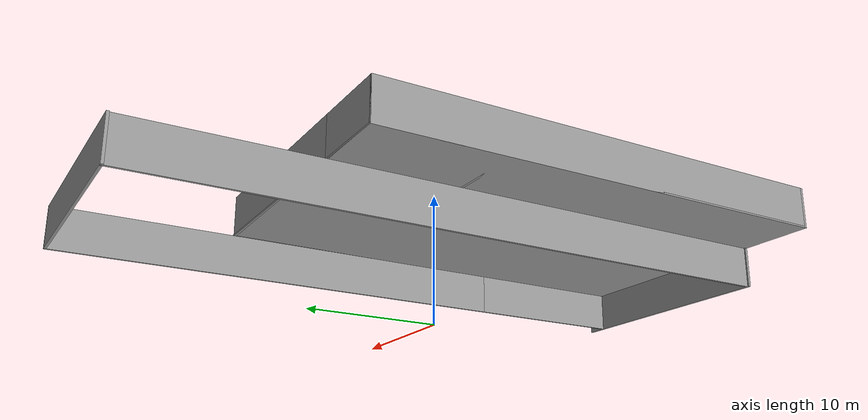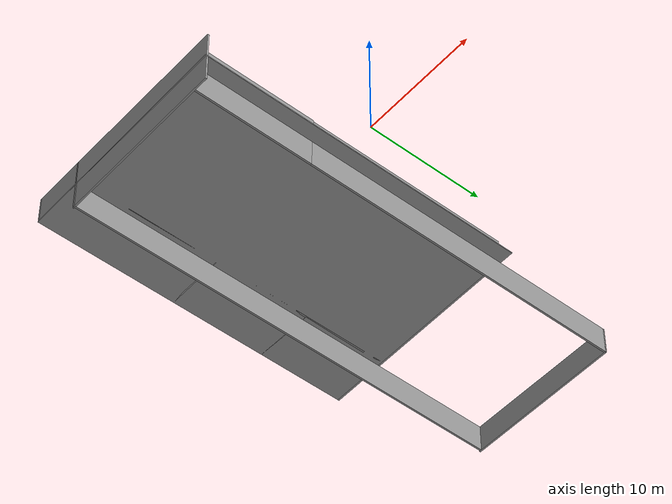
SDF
<?xml version='1.0'?>
<sdf version='1.6'>
  <model name='second_add'>
    <pose frame=''>-13.8882 7.9927 0 0 -0 0</pose>
    <link name='Floor_1'>
      <collision name='Floor_1_Collision'>
        <geometry>
          <box>
            <size>19.9273 28.7505 0.1</size>
          </box>
        </geometry>
        <pose frame=''>0 0 0.05 0 -0 0</pose>
      </collision>
      <visual name='Floor_1_Visual'>
        <pose frame=''>0 0 0.05 0 -0 0</pose>
        <geometry>
          <box>
            <size>19.9273 28.7505 0.1</size>
          </box>
        </geometry>
        <material>
          <script>
            <uri>file://media/materials/scripts/gazebo.material</uri>
            <name>Gazebo/Grey</name>
          </script>
          <ambient>1 1 1 1</ambient>
        </material>
        <meta>
          <layer>1</layer>
        </meta>
      </visual>
      <pose frame=''>1e-06 -5.29758 2.5 0 -0 0</pose>
    </link>
    <link name='Wall_17'>
      <collision name='Wall_17_Collision'>
        <geometry>
          <box>
            <size>15.3272 0.15 2.5</size>
          </box>
        </geometry>
        <pose frame=''>0 0 1.25 0 -0 0</pose>
      </collision>
      <visual name='Wall_17_Visual'>
        <pose frame=''>0 0 1.25 0 -0 0</pose>
        <geometry>
          <box>
            <size>15.3272 0.15 2.5</size>
          </box>
        </geometry>
        <material>
          <script>
            <uri>file://media/materials/scripts/gazebo.material</uri>
            <name>Gazebo/Grey</name>
          </script>
          <ambient>1 1 1 1</ambient>
        </material>
        <meta>
          <layer>1</layer>
        </meta>
      </visual>
      <pose frame=''>2.29977 -19.55 2.5 0 -0 0.006236</pose>
    </link>
    <link name='Wall_18'>
      <collision name='Wall_18_Collision'>
        <geometry>
          <box>
            <size>10.5 0.15 2.5</size>
          </box>
        </geometry>
        <pose frame=''>0 0 1.25 0 -0 0</pose>
      </collision>
      <visual name='Wall_18_Visual'>
        <pose frame=''>0 0 1.25 0 -0 0</pose>
        <geometry>
          <box>
            <size>10.5 0.15 2.5</size>
          </box>
        </geometry>
        <material>
          <script>
            <uri>file://media/materials/scripts/gazebo.material</uri>
            <name>Gazebo/Grey</name>
          </script>
          <ambient>1 1 1 1</ambient>
        </material>
        <meta>
          <layer>1</layer>
        </meta>
      </visual>
      <pose frame=''>8.6382 -14.1777 2.5 0 -0 -1.5708</pose>
    </link>
    <link name='Wall_2'>
      <collision name='Wall_2_Collision'>
        <geometry>
          <box>
            <size>28.75 0.15 2.5</size>
          </box>
        </geometry>
        <pose frame=''>0 0 1.25 0 -0 0</pose>
      </collision>
      <visual name='Wall_2_Visual'>
        <pose frame=''>0 0 1.25 0 -0 0</pose>
        <geometry>
          <box>
            <size>28.75 0.15 2.5</size>
          </box>
        </geometry>
        <material>
          <script>
            <uri>file://media/materials/scripts/gazebo.material</uri>
            <name>Gazebo/Grey</name>
          </script>
          <ambient>1 1 1 1</ambient>
        </material>
        <meta>
          <layer>0</layer>
        </meta>
      </visual>
      <pose frame=''>8.6382 5.2973 0 0 -0 1.5708</pose>
    </link>
    <link name='Wall_20'>
      <collision name='Wall_20_Collision'>
        <geometry>
          <box>
            <size>4.75 0.15 2.5</size>
          </box>
        </geometry>
        <pose frame=''>0 0 1.25 0 -0 0</pose>
      </collision>
      <visual name='Wall_20_Visual'>
        <pose frame=''>0 0 1.25 0 -0 0</pose>
        <geometry>
          <box>
            <size>4.75 0.15 2.5</size>
          </box>
        </geometry>
        <material>
          <script>
            <uri>file://media/materials/scripts/gazebo.material</uri>
            <name>Gazebo/Grey</name>
          </script>
          <ambient>1 1 1 1</ambient>
        </material>
        <meta>
          <layer>1</layer>
        </meta>
      </visual>
      <pose frame=''>-7.58866 -19.5973 2.5 0 -0 3.14159</pose>
    </link>
    <link name='Wall_21'>
      <collision name='Wall_21_Collision'>
        <geometry>
          <box>
            <size>28.75 0.15 2.5</size>
          </box>
        </geometry>
        <pose frame=''>0 0 1.25 0 -0 0</pose>
      </collision>
      <visual name='Wall_21_Visual'>
        <pose frame=''>0 0 1.25 0 -0 0</pose>
        <geometry>
          <box>
            <size>28.75 0.15 2.5</size>
          </box>
        </geometry>
        <material>
          <script>
            <uri>file://media/materials/scripts/gazebo.material</uri>
            <name>Gazebo/Grey</name>
          </script>
          <ambient>1 1 1 1</ambient>
        </material>
        <meta>
          <layer>1</layer>
        </meta>
      </visual>
      <pose frame=''>-9.88866 -5.29734 2.5 0 -0 1.5708</pose>
    </link>
    <link name='Wall_22'>
      <collision name='Wall_22_Collision'>
        <geometry>
          <box>
            <size>5 0.15 2.5</size>
          </box>
        </geometry>
        <pose frame=''>0 0 1.25 0 -0 0</pose>
      </collision>
      <visual name='Wall_22_Visual'>
        <pose frame=''>0 0 1.25 0 -0 0</pose>
        <geometry>
          <box>
            <size>5 0.15 2.5</size>
          </box>
        </geometry>
        <material>
          <script>
            <uri>file://media/materials/scripts/gazebo.material</uri>
            <name>Gazebo/Grey</name>
          </script>
          <ambient>1 1 1 1</ambient>
        </material>
        <meta>
          <layer>1</layer>
        </meta>
      </visual>
      <pose frame=''>-7.46366 9.00266 2.5 0 -0 0</pose>
    </link>
    <link name='Wall_24'>
      <collision name='Wall_24_Collision'>
        <geometry>
          <box>
            <size>13.75 0.15 2.5</size>
          </box>
        </geometry>
        <pose frame=''>0 0 1.25 0 -0 0</pose>
      </collision>
      <visual name='Wall_24_Visual'>
        <pose frame=''>0 0 1.25 0 -0 0</pose>
        <geometry>
          <box>
            <size>13.75 0.15 2.5</size>
          </box>
        </geometry>
        <material>
          <script>
            <uri>file://media/materials/scripts/gazebo.material</uri>
            <name>Gazebo/Grey</name>
          </script>
          <ambient>1 1 1 1</ambient>
        </material>
        <meta>
          <layer>1</layer>
        </meta>
      </visual>
      <pose frame=''>1.76134 9.00266 2.5 0 -0 0</pose>
    </link>
    <link name='Wall_26'>
      <collision name='Wall_26_Collision'>
        <geometry>
          <box>
            <size>18.5 0.15 2.5</size>
          </box>
        </geometry>
        <pose frame=''>0 0 1.25 0 -0 0</pose>
      </collision>
      <visual name='Wall_26_Visual'>
        <pose frame=''>0 0 1.25 0 -0 0</pose>
        <geometry>
          <box>
            <size>18.5 0.15 2.5</size>
          </box>
        </geometry>
        <material>
          <script>
            <uri>file://media/materials/scripts/gazebo.material</uri>
            <name>Gazebo/Grey</name>
          </script>
          <ambient>1 1 1 1</ambient>
        </material>
        <meta>
          <layer>1</layer>
        </meta>
      </visual>
      <pose frame=''>8.56134 -0.172342 2.5 0 -0 -1.5708</pose>
    </link>
    <link name='Wall_3'>
      <collision name='Wall_3_Collision'>
        <geometry>
          <box>
            <size>14.0772 0.15 2.5</size>
          </box>
        </geometry>
        <pose frame=''>0 0 1.25 0 -0 0</pose>
      </collision>
      <visual name='Wall_3_Visual'>
        <pose frame=''>0 0 1.25 0 -0 0</pose>
        <geometry>
          <box>
            <size>14.0772 0.15 2.5</size>
          </box>
        </geometry>
        <material>
          <script>
            <uri>file://media/materials/scripts/gazebo.material</uri>
            <name>Gazebo/Grey</name>
          </script>
          <ambient>1 1 1 1</ambient>
        </material>
        <meta>
          <layer>0</layer>
        </meta>
      </visual>
      <pose frame=''>1.67477 19.55 0 0 -0 -3.1348</pose>
    </link>
    <link name='Wall_31'>
      <collision name='Wall_31_Collision'>
        <geometry>
          <box>
            <size>5.25 0.15 2.5</size>
          </box>
        </geometry>
        <pose frame=''>0 0 1.25 0 -0 0</pose>
      </collision>
      <visual name='Wall_31_Visual'>
        <pose frame=''>0 0 1.25 0 -0 0</pose>
        <geometry>
          <box>
            <size>5.25 0.15 2.5</size>
          </box>
        </geometry>
        <material>
          <script>
            <uri>file://media/materials/scripts/gazebo.material</uri>
            <name>Gazebo/Grey</name>
          </script>
          <ambient>1 1 1 1</ambient>
        </material>
        <meta>
          <layer>1</layer>
        </meta>
      </visual>
      <pose frame=''>-7.28649 1.3805 2.5 0 -0 0</pose>
    </link>
    <link name='Wall_32'>
      <pose frame=''>-4.73649 -9.0445 2.5 0 -0 -1.5708</pose>
      <visual name='Wall_32_Visual_0'>
        <pose frame=''>-9.98504 0 1.25 0 -0 0</pose>
        <geometry>
          <box>
            <size>1.02992 0.15 2.5</size>
          </box>
        </geometry>
        <material>
          <script>
            <uri>file://media/materials/scripts/gazebo.material</uri>
            <name>Gazebo/Grey</name>
          </script>
          <ambient>1 1 1 1</ambient>
        </material>
        <meta>
          <layer>1</layer>
        </meta>
      </visual>
      <collision name='Wall_32_Collision_0'>
        <geometry>
          <box>
            <size>1.02992 0.15 2.5</size>
          </box>
        </geometry>
        <pose frame=''>-9.98504 0 1.25 0 -0 0</pose>
      </collision>
      <visual name='Wall_32_Visual_1'>
        <pose frame=''>-4.61896 0 1.25 0 -0 0</pose>
        <geometry>
          <box>
            <size>7.90224 0.15 2.5</size>
          </box>
        </geometry>
        <material>
          <script>
            <uri>file://media/materials/scripts/gazebo.material</uri>
            <name>Gazebo/Grey</name>
          </script>
          <ambient>1 1 1 1</ambient>
        </material>
        <meta>
          <layer>1</layer>
        </meta>
      </visual>
      <collision name='Wall_32_Collision_1'>
        <geometry>
          <box>
            <size>7.90224 0.15 2.5</size>
          </box>
        </geometry>
        <pose frame=''>-4.61896 0 1.25 0 -0 0</pose>
      </collision>
      <visual name='Wall_32_Visual_2'>
        <pose frame=''>3.25296 0 1.25 0 -0 0</pose>
        <geometry>
          <box>
            <size>6.0416 0.15 2.5</size>
          </box>
        </geometry>
        <material>
          <script>
            <uri>file://media/materials/scripts/gazebo.material</uri>
            <name>Gazebo/Grey</name>
          </script>
          <ambient>1 1 1 1</ambient>
        </material>
        <meta>
          <layer>1</layer>
        </meta>
      </visual>
      <collision name='Wall_32_Collision_2'>
        <geometry>
          <box>
            <size>6.0416 0.15 2.5</size>
          </box>
        </geometry>
        <pose frame=''>3.25296 0 1.25 0 -0 0</pose>
      </collision>
      <visual name='Wall_32_Visual_3'>
        <pose frame=''>8.83688 0 1.25 0 -0 0</pose>
        <geometry>
          <box>
            <size>3.32624 0.15 2.5</size>
          </box>
        </geometry>
        <material>
          <script>
            <uri>file://media/materials/scripts/gazebo.material</uri>
            <name>Gazebo/Grey</name>
          </script>
          <ambient>1 1 1 1</ambient>
        </material>
        <meta>
          <layer>1</layer>
        </meta>
      </visual>
      <collision name='Wall_32_Collision_3'>
        <geometry>
          <box>
            <size>3.32624 0.15 2.5</size>
          </box>
        </geometry>
        <pose frame=''>8.83688 0 1.25 0 -0 0</pose>
      </collision>
      <visual name='Wall_32_Visual_4'>
        <pose frame=''>-9.02008 0 2.25 0 -0 0</pose>
        <geometry>
          <box>
            <size>0.9 0.15 0.5</size>
          </box>
        </geometry>
        <material>
          <script>
            <uri>file://media/materials/scripts/gazebo.material</uri>
            <name>Gazebo/Grey</name>
          </script>
          <ambient>1 1 1 1</ambient>
        </material>
        <meta>
          <layer>1</layer>
        </meta>
      </visual>
      <collision name='Wall_32_Collision_4'>
        <geometry>
          <box>
            <size>0.9 0.15 0.5</size>
          </box>
        </geometry>
        <pose frame=''>-9.02008 0 2.25 0 -0 0</pose>
      </collision>
      <visual name='Wall_32_Visual_5'>
        <pose frame=''>-0.217841 0 2.25 0 -0 0</pose>
        <geometry>
          <box>
            <size>0.9 0.15 0.5</size>
          </box>
        </geometry>
        <material>
          <script>
            <uri>file://media/materials/scripts/gazebo.material</uri>
            <name>Gazebo/Grey</name>
          </script>
          <ambient>1 1 1 1</ambient>
        </material>
        <meta>
          <layer>1</layer>
        </meta>
      </visual>
      <collision name='Wall_32_Collision_5'>
        <geometry>
          <box>
            <size>0.9 0.15 0.5</size>
          </box>
        </geometry>
        <pose frame=''>-0.217841 0 2.25 0 -0 0</pose>
      </collision>
      <visual name='Wall_32_Visual_6'>
        <pose frame=''>6.72377 0 2.25 0 -0 0</pose>
        <geometry>
          <box>
            <size>0.9 0.15 0.5</size>
          </box>
        </geometry>
        <material>
          <script>
            <uri>file://media/materials/scripts/gazebo.material</uri>
            <name>Gazebo/Grey</name>
          </script>
          <ambient>1 1 1 1</ambient>
        </material>
        <meta>
          <layer>1</layer>
        </meta>
      </visual>
      <collision name='Wall_32_Collision_6'>
        <geometry>
          <box>
            <size>0.9 0.15 0.5</size>
          </box>
        </geometry>
        <pose frame=''>6.72377 0 2.25 0 -0 0</pose>
      </collision>
    </link>
    <link name='Wall_34'>
      <pose frame=''>-4.73649 5.1805 2.5 0 -0 1.5708</pose>
      <visual name='Wall_34_Visual_0'>
        <pose frame=''>-0.939314 0 1.25 0 -0 0</pose>
        <geometry>
          <box>
            <size>5.87137 0.15 2.5</size>
          </box>
        </geometry>
        <material>
          <script>
            <uri>file://media/materials/scripts/gazebo.material</uri>
            <name>Gazebo/Grey</name>
          </script>
          <ambient>1 1 1 1</ambient>
        </material>
        <meta>
          <layer>1</layer>
        </meta>
      </visual>
      <collision name='Wall_34_Collision_0'>
        <geometry>
          <box>
            <size>5.87137 0.15 2.5</size>
          </box>
        </geometry>
        <pose frame=''>-0.939314 0 1.25 0 -0 0</pose>
      </collision>
      <visual name='Wall_34_Visual_1'>
        <pose frame=''>3.38569 0 1.25 0 -0 0</pose>
        <geometry>
          <box>
            <size>0.978629 0.15 2.5</size>
          </box>
        </geometry>
        <material>
          <script>
            <uri>file://media/materials/scripts/gazebo.material</uri>
            <name>Gazebo/Grey</name>
          </script>
          <ambient>1 1 1 1</ambient>
        </material>
        <meta>
          <layer>1</layer>
        </meta>
      </visual>
      <collision name='Wall_34_Collision_1'>
        <geometry>
          <box>
            <size>0.978629 0.15 2.5</size>
          </box>
        </geometry>
        <pose frame=''>3.38569 0 1.25 0 -0 0</pose>
      </collision>
      <visual name='Wall_34_Visual_2'>
        <pose frame=''>2.44637 0 2.25 0 -0 0</pose>
        <geometry>
          <box>
            <size>0.9 0.15 0.5</size>
          </box>
        </geometry>
        <material>
          <script>
            <uri>file://media/materials/scripts/gazebo.material</uri>
            <name>Gazebo/Grey</name>
          </script>
          <ambient>1 1 1 1</ambient>
        </material>
        <meta>
          <layer>1</layer>
        </meta>
      </visual>
      <collision name='Wall_34_Collision_2'>
        <geometry>
          <box>
            <size>0.9 0.15 0.5</size>
          </box>
        </geometry>
        <pose frame=''>2.44637 0 2.25 0 -0 0</pose>
      </collision>
    </link>
    <link name='Wall_36'>
      <collision name='Wall_36_Collision'>
        <geometry>
          <box>
            <size>5 0.15 2.5</size>
          </box>
        </geometry>
        <pose frame=''>0 0 1.25 0 -0 0</pose>
      </collision>
      <visual name='Wall_36_Visual'>
        <pose frame=''>0 0 1.25 0 -0 0</pose>
        <geometry>
          <box>
            <size>5 0.15 2.5</size>
          </box>
        </geometry>
        <material>
          <script>
            <uri>file://media/materials/scripts/gazebo.material</uri>
            <name>Gazebo/Grey</name>
          </script>
          <ambient>1 1 1 1</ambient>
        </material>
        <meta>
          <layer>1</layer>
        </meta>
      </visual>
      <pose frame=''>-7.24547 -7.23192 2.5 0 -0 3.14159</pose>
    </link>
    <link name='Wall_38'>
      <collision name='Wall_38_Collision'>
        <geometry>
          <box>
            <size>5.25 0.15 2.5</size>
          </box>
        </geometry>
        <pose frame=''>0 0 1.25 0 -0 0</pose>
      </collision>
      <visual name='Wall_38_Visual'>
        <pose frame=''>0 0 1.25 0 -0 0</pose>
        <geometry>
          <box>
            <size>5.25 0.15 2.5</size>
          </box>
        </geometry>
        <material>
          <script>
            <uri>file://media/materials/scripts/gazebo.material</uri>
            <name>Gazebo/Grey</name>
          </script>
          <ambient>1 1 1 1</ambient>
        </material>
        <meta>
          <layer>1</layer>
        </meta>
      </visual>
      <pose frame=''>-7.18118 -14.3301 2.5 0 -0 3.14159</pose>
    </link>
    <link name='Wall_4'>
      <collision name='Wall_4_Collision'>
        <geometry>
          <box>
            <size>39.25 0.15 2.5</size>
          </box>
        </geometry>
        <pose frame=''>0 0 1.25 0 -0 0</pose>
      </collision>
      <visual name='Wall_4_Visual'>
        <pose frame=''>0 0 1.25 0 -0 0</pose>
        <geometry>
          <box>
            <size>39.25 0.15 2.5</size>
          </box>
        </geometry>
        <material>
          <script>
            <uri>file://media/materials/scripts/gazebo.material</uri>
            <name>Gazebo/Grey</name>
          </script>
          <ambient>1 1 1 1</ambient>
        </material>
        <meta>
          <layer>0</layer>
        </meta>
      </visual>
      <pose frame=''>-5.19402 -0.047342 0 0 -0 -1.5708</pose>
    </link>
    <link name='Wall_5'>
      <collision name='Wall_5_Collision'>
        <geometry>
          <box>
            <size>15.3272 0.15 2.5</size>
          </box>
        </geometry>
        <pose frame=''>0 0 1.25 0 -0 0</pose>
      </collision>
      <visual name='Wall_5_Visual'>
        <pose frame=''>0 0 1.25 0 -0 0</pose>
        <geometry>
          <box>
            <size>15.3272 0.15 2.5</size>
          </box>
        </geometry>
        <material>
          <script>
            <uri>file://media/materials/scripts/gazebo.material</uri>
            <name>Gazebo/Grey</name>
          </script>
          <ambient>1 1 1 1</ambient>
        </material>
        <meta>
          <layer>0</layer>
        </meta>
      </visual>
      <pose frame=''>2.29977 -19.55 0 0 -0 0.006236</pose>
    </link>
    <link name='Wall_7'>
      <collision name='Wall_7_Collision'>
        <geometry>
          <box>
            <size>10.5 0.15 2.5</size>
          </box>
        </geometry>
        <pose frame=''>0 0 1.25 0 -0 0</pose>
      </collision>
      <visual name='Wall_7_Visual'>
        <pose frame=''>0 0 1.25 0 -0 0</pose>
        <geometry>
          <box>
            <size>10.5 0.15 2.5</size>
          </box>
        </geometry>
        <material>
          <script>
            <uri>file://media/materials/scripts/gazebo.material</uri>
            <name>Gazebo/Grey</name>
          </script>
          <ambient>1 1 1 1</ambient>
        </material>
        <meta>
          <layer>0</layer>
        </meta>
      </visual>
      <pose frame=''>8.6382 -14.1777 0 0 -0 -1.5708</pose>
    </link>
    <static>1</static>
  </model>
</sdf>
